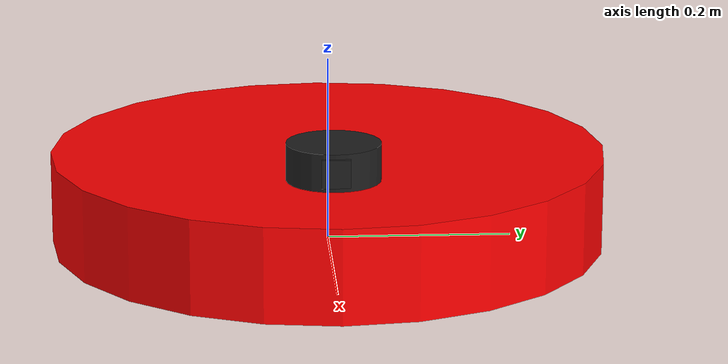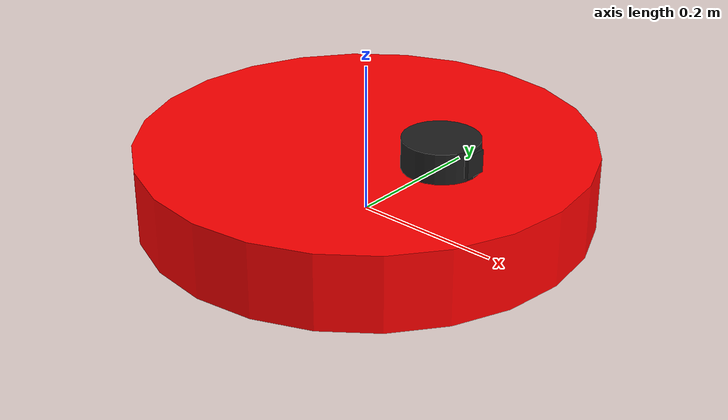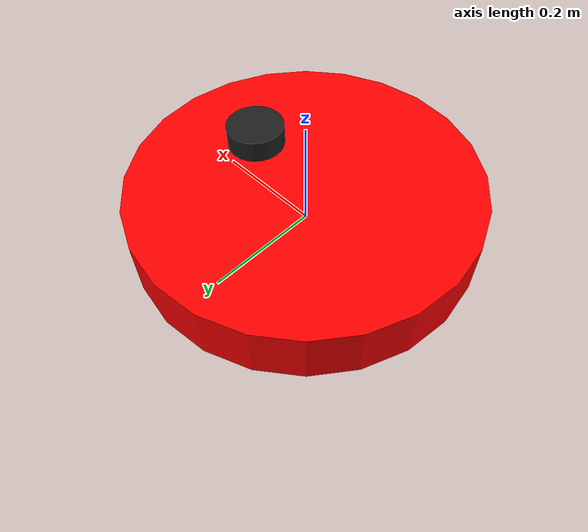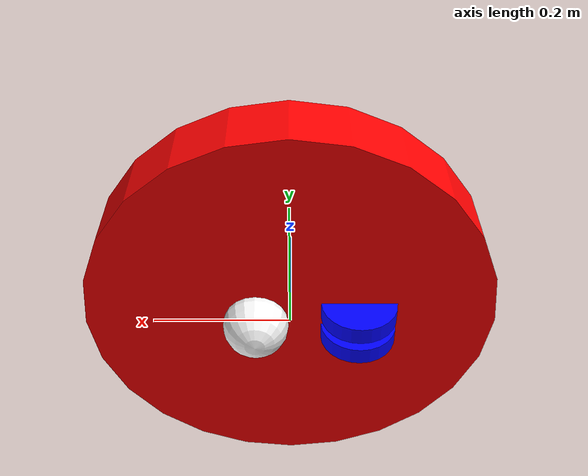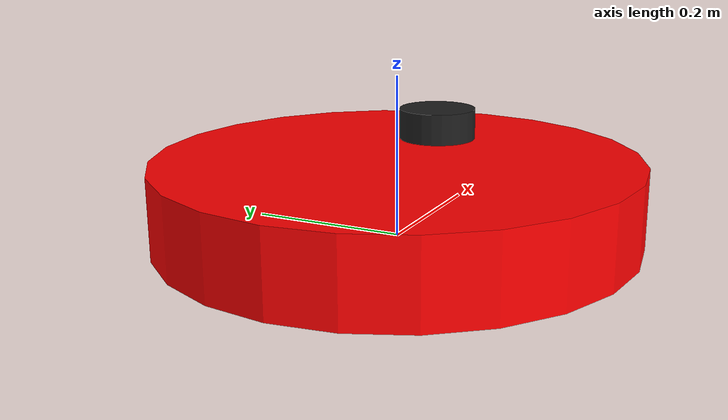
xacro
<?xml version="1.0"?>
<robot xmlns:xacro="http://www.ros.org/wiki/xacro"  name="robot">

    <xacro:arg name="use_ros2_control" default="true"/>
    <xacro:arg name="sim_mode" default="false"/>

    <xacro:include filename="robot_core.xacro" />

    <xacro:if value="$(arg use_ros2_control)">
        <xacro:include filename="ros2_control.xacro" />
    </xacro:if>
    <xacro:unless value="$(arg use_ros2_control)">
        <xacro:include filename="gazebo_control.xacro" />
    </xacro:unless>
    <xacro:include filename="lidar.xacro" />
    <xacro:include filename="camera.xacro" />
    <xacro:include filename="depth_camera.xacro" />

</robot>

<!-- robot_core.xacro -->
<robot xmlns:xacro="http://www.ros.org/wiki/xacro" >
    <xacro:include filename="inertial_macros.xacro"/>
    <xacro:property name="chassis_length" value="0.15"/>
    <xacro:property name="chassis_width" value="0.1"/>
    <xacro:property name="chassis_height" value="0.25"/>
    <xacro:property name="chassis_mass" value="1.0"/>
    <xacro:property name="wheel_radius" value="0.055"/>
    <xacro:property name="wheel_thickness" value="0.026"/>
    <xacro:property name="wheel_mass" value="0.05"/>
    <xacro:property name="wheel_offset_x" value="-0.1"/>
    <xacro:property name="wheel_offset_y" value="0.020"/>
    <xacro:property name="wheel_offset_z" value="0.005"/>
    <xacro:property name="caster_wheel_radius" value="0.048"/>
    <xacro:property name="caster_wheel_mass" value="0.01"/>
    <xacro:property name="caster_wheel_offset_x" value="0.05"/>
    <xacro:property name="caster_wheel_offset_z" value="${wheel_offset_z - wheel_radius + caster_wheel_radius}"/>

    <!-- Define Roomba-style robot properties. Example below shows the structure used to define xacro properties -->
    <xacro:property name="chassis_radius" value="0.127"/> <!-- Define all other required parameters in the same format -->

	<!-- Define material colours. An example for white is shown below -->
    <material name="white">
        <color rgba="1 1 1 1" />
    </material>
    <material name="blue">
        <color rgba="0 0 1 1" />
    </material>
    <material name="red">
        <color rgba="1 0 0 1" />
    </material>

	<!-- Define all of the robot links (base_link, chassis_link, wheels) -->

    <!-- BASE LINK -->
    <link name="base_link">
    </link>
    <!-- BASE_FOOTPRINT LINK -->
        <joint name="base_footprint_joint" type="fixed">
        <parent link="base_link"/>
        <child link="base_footprint"/>
        <origin xyz="0 0 0" rpy="0 0 0"/>
    </joint>
    <link name="base_footprint">
    </link>

    <!-- CHASSIS LINK -->
    <joint name="chassis_joint" type="fixed">
        <parent link="base_link"/>
        <child link="chassis"/>
        <origin xyz="0 0 0"/>
    </joint>
    <link name="chassis">
        <visual>
            <origin xyz="0 0 0.05"/>
            <geometry>
                <cylinder radius="0.3" length="0.1"/>
            </geometry>
            <material name="red"/>
        </visual>
        <collision>
            <origin xyz="0 0 0.05"/>
            <geometry>
                <cylinder radius="0.5" length="0.1"/>
            </geometry>
        </collision>
        <xacro:inertial_cylinder mass="1.0" length="0.1" radius="0.5">
            <origin xyz="0 0 0.1" rpy="0 0 0"/>
        </xacro:inertial_cylinder>
    </link>
    <gazebo reference="chassis">
        <material>Gazebo/Red</material>
    </gazebo>

    <!-- LEFT WHEEL LINK -->
      <joint name="left_wheel_joint" type="continuous">
        <parent link="base_link"/>
        <child link="left_wheel"/>
        <origin xyz="${wheel_offset_x} ${wheel_offset_y} 0" rpy="-${pi/2} 0 0" />
        <axis xyz="0 0 1"/>
    </joint>

    <link name="left_wheel">
        <visual>
            <geometry>
                <cylinder radius="${wheel_radius}" length="${wheel_thickness}"/>
            </geometry>
            <material name="blue"/>
        </visual>
        <collision>
            <geometry>
                <sphere radius="${wheel_radius}"/>
            </geometry>
        </collision>
        <xacro:inertial_cylinder mass="${wheel_mass}" length="${wheel_thickness}" radius="${wheel_radius}">
            <origin xyz="0 0 0" rpy="0 0 0"/>
        </xacro:inertial_cylinder>
    </link>

    <gazebo reference="left_wheel">
        <material>Gazebo/Blue</material>
    </gazebo>

    <!-- RIGHT WHEEL LINK -->
     <joint name="right_wheel_joint" type="continuous">
        <parent link="base_link"/>
        <child link="right_wheel"/>
        <origin xyz="${wheel_offset_x} ${-wheel_offset_y} 0" rpy="${pi/2} 0 0" />
        <axis xyz="0 0 -1"/>
    </joint>

    <link name="right_wheel">
        <visual>
            <geometry>
                <cylinder radius="${wheel_radius}" length="${wheel_thickness}"/>
            </geometry>
            <material name="blue"/>
        </visual>
        <collision>
            <geometry>
                <sphere radius="${wheel_radius}"/>
            </geometry>
        </collision>
        <xacro:inertial_cylinder mass="${wheel_mass}" length="${wheel_thickness}" radius="${wheel_radius}">
            <origin xyz="0 0 0" rpy="0 0 0"/>
        </xacro:inertial_cylinder>
    </link>

    <gazebo reference="right_wheel">
        <material>Gazebo/Blue</material>
    </gazebo>

    <!-- CASTER WHEEL LINK -->
    <joint name="caster_wheel_joint" type="fixed">
        <parent link="chassis"/>
        <child link="caster_wheel"/>
        <origin xyz="${caster_wheel_offset_x} 0 -.01"/>
    </joint>

    <link name="caster_wheel">
        <visual>
            <geometry>
                <sphere radius="${caster_wheel_radius}"/>
            </geometry>
            <material name="white"/>
        </visual>
        <collision>
            <geometry>
                <sphere radius="${caster_wheel_radius}"/>
            </geometry>
        </collision>
        <xacro:inertial_sphere mass="${caster_wheel_mass}" radius="${caster_wheel_radius}">
            <origin xyz="0 0 0" rpy="0 0 0"/>
        </xacro:inertial_sphere>
    </link>

    <gazebo reference="caster_wheel">
        <material>Gazebo/White</material>
        <mu1 value="0.001"/>
        <mu2 value="0.001"/>
    </gazebo>

</robot>

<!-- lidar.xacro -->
<robot xmlns:xacro="http://www.ros.org/wiki/xacro" >

    <joint name="laser_joint" type="fixed">
        <parent link="chassis"/>
        <child link="laser_frame"/>
        <origin xyz="0.122 0 0.12" rpy="0 0 0"/>
    </joint>

    <link name="laser_frame">
        <visual>
            <geometry>
                <cylinder radius="0.05" length="0.04"/>
            </geometry>
            <material name="black"/>
        </visual>

        <visual>
            <origin xyz="0 0 -0.01"/>
            <geometry>
                <cylinder radius="0.01" length="0.05"/>
            </geometry>
            <material name="black"/>
        </visual>
        <collision>
            <geometry>
                <cylinder radius="0.05" length="0.04"/>
            </geometry>
        </collision>
        <xacro:inertial_cylinder mass="0.1" length="0.04" radius="0.05">
            <origin xyz="0 0 0" rpy="0 0 0"/>
        </xacro:inertial_cylinder>
    </link>

    <gazebo reference="laser_frame">
        <material>Gazebo/Green</material>

        <sensor name="laser" type="ray">
            <pose> 0 0 0 0 0 0 </pose>
            <visualize>true</visualize>
            <update_rate>5</update_rate>
            <ray>
                <scan>
                    <horizontal>
                        <samples>180</samples>
                        <min_angle>-3.14</min_angle>
                        <max_angle>3.14</max_angle>
                    </horizontal>
                </scan>
                <range>
                    <min>0.1</min>
                    <max>15</max>
                </range>
                <noise>
                    <type>gaussian</type>
                    <mean>0.0</mean>
                    <stddev>0.03</stddev>
                </noise>
            </ray>
            <plugin name="laser_controller" filename="libgazebo_ros_ray_sensor.so">
                <ros>
                    <argument>~/out:=scan</argument>
                </ros>
                <output_type>sensor_msgs/LaserScan</output_type>
                <frame_name>laser_frame</frame_name>
            </plugin>
        </sensor>
    </gazebo>

</robot>

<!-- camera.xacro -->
<robot xmlns:xacro="http://www.ros.org/wiki/xacro" >

    <joint name="camera_joint" type="fixed">
        <parent link="chassis"/>
        <child link="camera_link"/>
        <origin xyz="0.17 0 0.12" rpy="0 0 0"/>
    </joint>

    <link name="camera_link">
        <visual>
            <geometry>
                <box size="0.010 0.03 0.03"/>
            </geometry>
            <material name="black"/>
        </visual>
        <visual>
            <origin xyz="0 0 -0.05"/>
            <geometry>
                <cylinder radius="0.002" length="0.1"/>
            </geometry>
            <material name="black"/>
        </visual>
    </link>

    <joint name="camera_optical_joint" type="fixed">
        <parent link="camera_link"/>
        <child link="camera_link_optical"/>
        <origin xyz="0 0 0" rpy="${-pi/2} 0 ${-pi/2}"/>
        <origin xyz="0 0 0" rpy="${-pi/2} ${pi/9} ${-pi/2}"/>
    </joint>

    <link name="camera_link_optical"></link>

    <gazebo reference="camera_link">
        <material>Gazebo/Blue</material>

        <sensor name="camera" type="camera">
            <pose> 0 0 0 0 0 0 </pose>
            <visualize>true</visualize>
            <update_rate>10</update_rate>
            <camera>
                <horizontal_fov>2.0944</horizontal_fov> <!--90 degree fov-->

                <image>
                    <format>R8G8B8</format>
                    <width>640</width>
                    <height>480</height>
                </image>
                <clip>
                    <near>0.05</near>
                    <far>20.0</far>
                </clip>
                <distortion>
                  <k1>0.2</k1> <!-- Radial distortion coefficient -->
                  <k2>0.0</k2>  <!-- Radial distortion coefficient -->
                  <k3>0.0</k3>   <!-- Sometimes used for higher-order distortion -->
                  <p1>0.0</p1>   <!-- Tangential distortion coefficient -->
                  <p2>0.0</p2>   <!-- Tangential distortion coefficient -->
                  <center>0.5 0.5</center> <!-- Distortion center in normalized coordinates -->
                </distortion>
                <noise>
                    <type>gaussian</type>
                    <mean>0.0</mean>
                    <stddev>0.01</stddev>
                </noise>
            </camera>
            <plugin name="camera_controller" filename="libgazebo_ros_camera.so">
                <frame_name>camera_link_optical</frame_name>
            </plugin>
        </sensor>
    </gazebo>

</robot>

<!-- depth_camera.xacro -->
<robot xmlns:xacro="http://www.ros.org/wiki/xacro">
    <joint name="depth_camera_joint" type="fixed">
        <parent link="chassis"/>
        <child link="depth_camera_link"/>
        <origin xyz="0.15 0 0.12" rpy="0 0 0"/>
    </joint>

    <link name="depth_camera_link">
        <visual>
            <geometry>
                <box size="0.010 0.03 0.03"/>
            </geometry>
            <material name="red"/>
        </visual>
    </link>

    <joint name="depth_camera_optical_joint" type="fixed">
        <parent link="depth_camera_link"/>
        <child link="depth_camera_optical_link"/>
        <origin xyz="0 0 0" rpy="${-pi/2} 0 ${-pi/2}"/>
    </joint>

    <link name="depth_camera_optical_link"></link>

    <gazebo reference="depth_camera_link">
      <sensor name="depth_camera" type="depth">
        <pose>0 0 0 0 0 0</pose>
        <visualize>true</visualize>
        <update_rate>10</update_rate>
        <camera>
          <horizontal_fov>1.089</horizontal_fov>
          <image>
            <width>640</width>
            <height>480</height>
            <format>B8G8R8</format>
          </image>
          <clip>
            <near>0.1</near>
            <far>8.0</far>
          </clip>
        </camera>
        <plugin name="depth_camera_controller" filename="libgazebo_ros_camera.so">
          <frame_name>depth_camera_optical_link</frame_name>
          <min_depth>0.1</min_depth>
          <max_depth>8.0</max_depth>
        </plugin>
      </sensor>
    </gazebo>

</robot>
